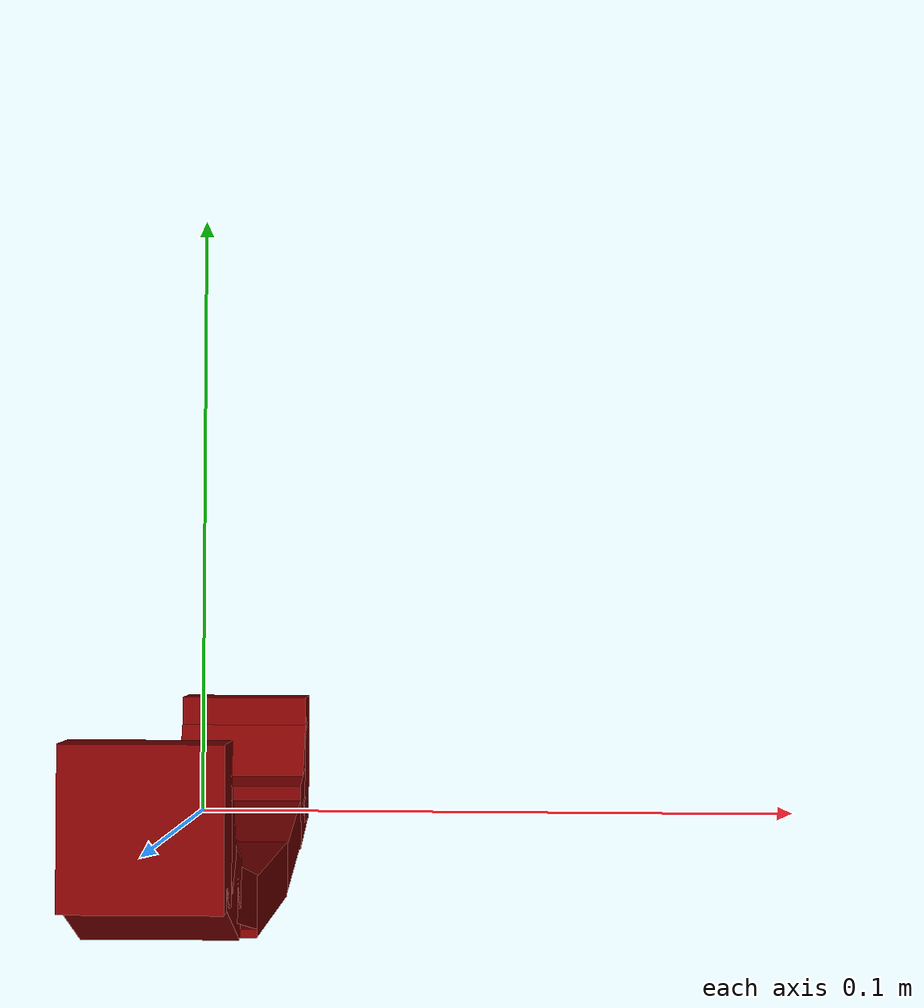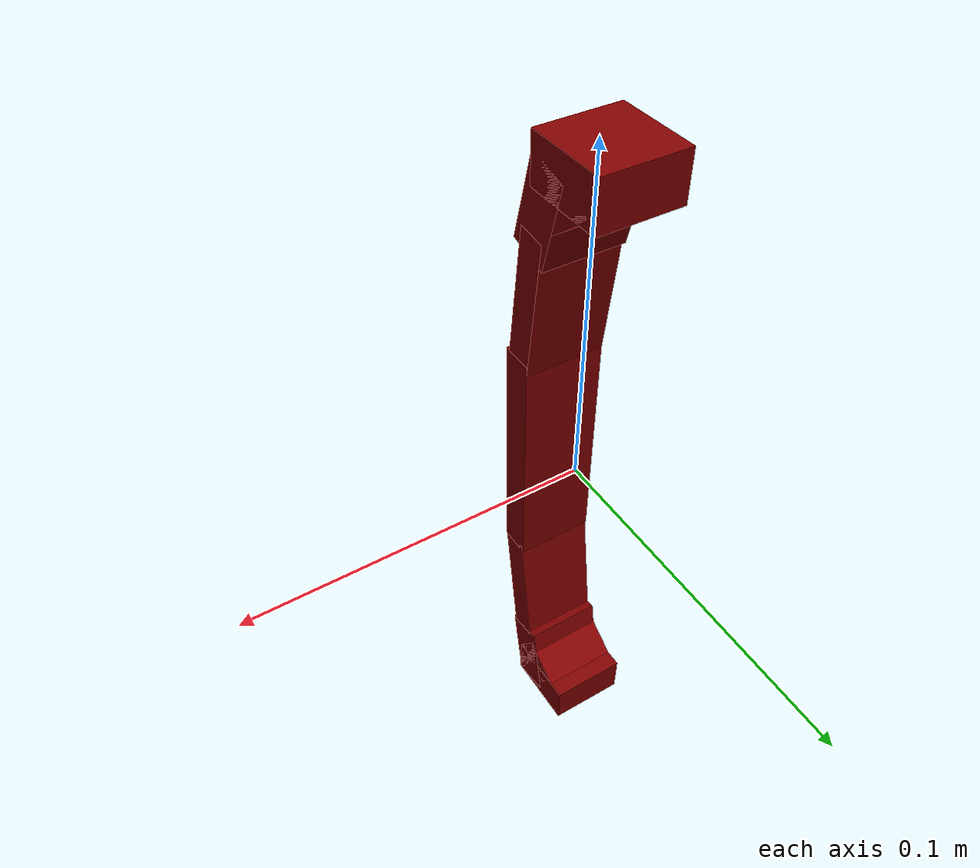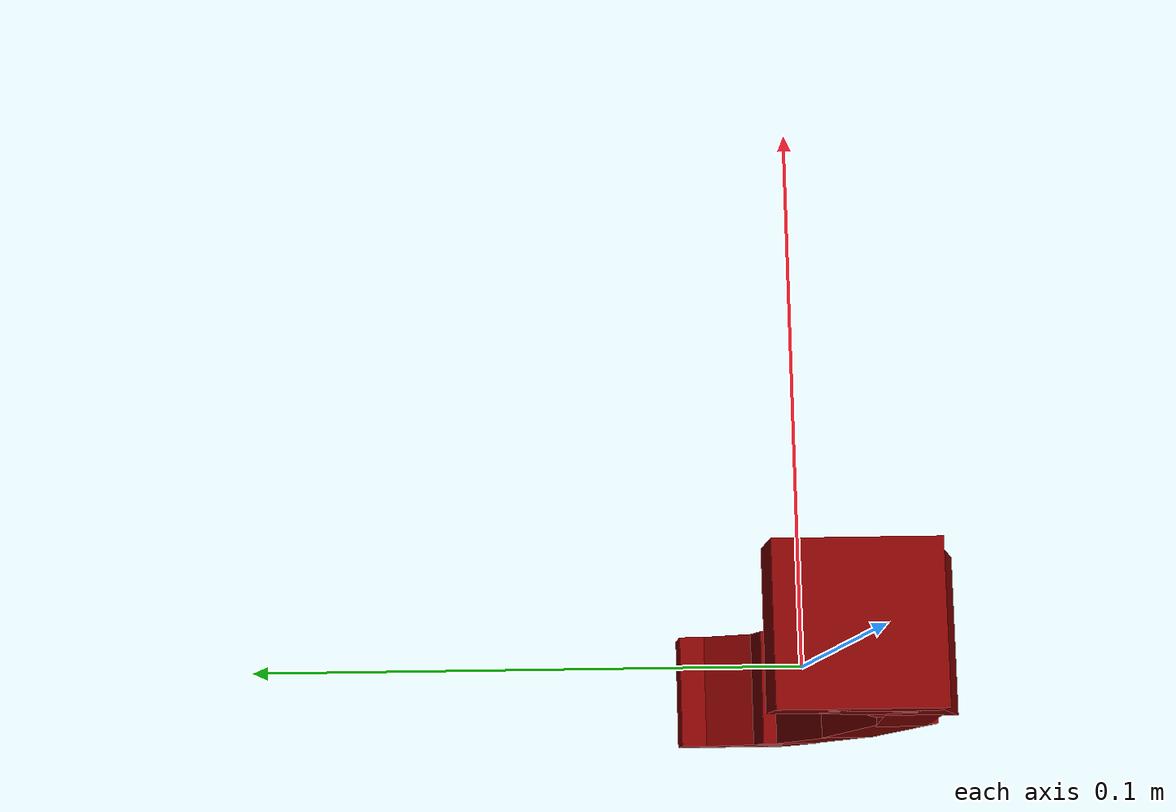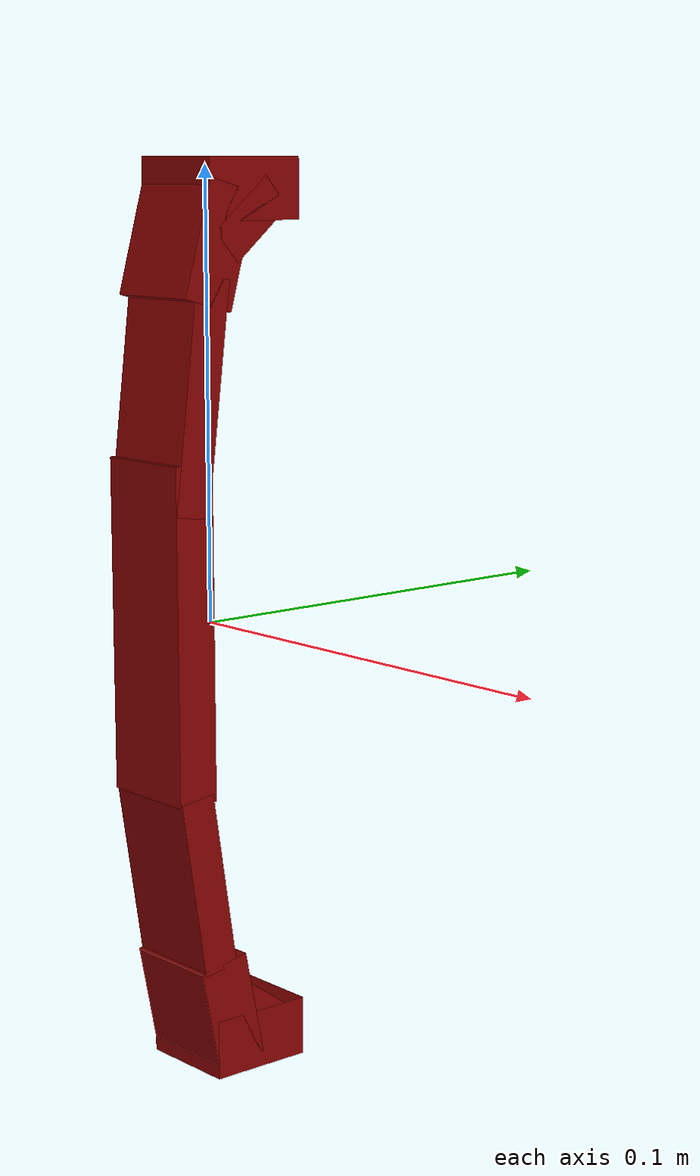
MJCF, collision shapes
<?xml version='1.0' encoding='UTF-8'?>
<mujoco model="model">
  <option timestep="0.002" gravity="0.0 0.0 -9.81"/>
  <compiler angle="radian"/>
  <asset>
    <mesh file="visuals/CabinetHandle047.obj" name="CabinetHandle047_vis"/>
    <texture file="visuals/T_BC001.png" name="tex" type="2d"/>
    <material name="mat" rgba="1 1 1 1.0" texture="tex" shininess="0.4472135901451111" specular="0.3103448502657381"/>
  </asset>
  <default>
    <default class="visual">
      <geom conaffinity="0" contype="0" group="1" type="mesh"/>
    </default>
    <default class="collision">
      <geom group="0" rgba="0.5 0 0 0.5" density="1.0" solref="0.004 1" solimp="0.998 0.998 0.001"/>
    </default>
    <default class="spawn">
      <geom group="0" rgba="1 1 1 0.5" contype="0" conaffinity="0"/>
      <site group="0" rgba="1 1 1 0.5"/>
    </default>
    <default class="region">
      <geom group="1" conaffinity="0" contype="0" rgba="0 1 0 0" mass="0"/>
    </default>
  </default>
  <worldbody>
    <body>
      <body name="object">
        <geom mesh="CabinetHandle047_vis" type="mesh" solimp="0.998 0.998 0.001" solref="0.001 1" friction="0.95 0.3 0.1" class="visual" material="mat"/>
        <geom type="box" pos="0.0 -0.012933514080941677 0.0" size="0.01192836556583643 0.004877060651779175 0.03721724823117256" quat="1.0 0.0 0.0 0.0" class="collision"/>
        <geom type="box" pos="-1.3156954911485228e-18 -0.010313878767192364 0.05119266360998154" size="0.01192836370319128 0.004316112492233515 0.025503046810626984" quat="0.9981622695922852 -0.06059722974896431 9.08295680499264e-18 -2.2219544668640433e-19" class="collision"/>
        <geom type="box" pos="2.250568195215901e-17 -0.010193996131420135 -0.056089285761117935" size="0.01192836370319128 0.004302943591028452 0.02027921937406063" quat="0.9972715377807617 0.07382054626941681 -2.0694487282912902e-17 -8.065914667211234e-19" class="collision"/>
        <geom type="box" pos="-1.0853313567397006e-17 0.004013151861727238 0.09488841146230698" size="0.011928366497159004 0.012105558067560196 0.006724787410348654" quat="1.0 0.0 0.0 0.0" class="collision"/>
        <geom type="box" pos="-8.245003819322334e-18 -0.00513478321954608 0.08314163982868195" size="0.01192836370319128 0.006194074172526598 0.013019957579672337" quat="0.9910342693328857 -0.13360773026943207 2.5290034759739056e-17 9.892852651465759e-20" class="collision"/>
        <geom type="box" pos="-9.433746731983515e-18 0.003233498428016901 0.08849526196718216" size="0.01192836370319128 0.00449305260553956 0.008921322412788868" quat="0.9072543978691101 -0.42058223485946655 8.923601287164911e-17 1.3882872073449514e-18" class="collision"/>
        <geom type="box" pos="2.9686933158099376e-17 -0.003964059986174107 -0.0876886248588562" size="0.01192836370319128 0.006194074172526598 0.013019956648349762" quat="0.9954765439033508 0.09500749409198761 -2.5380793016548374e-17 -8.978954559395735e-19" class="collision"/>
        <geom type="box" pos="-1.0714169380656398e-17 0.003908710088580847 -0.09477459639310837" size="0.01192836556583643 0.012105558067560196 0.006724787410348654" quat="1.0 0.0 0.0 0.0" class="collision"/>
        <geom type="box" pos="2.977169600982891e-17 0.003012977074831724 -0.08807036280632019" size="0.01192836370319128 0.00449305260553956 0.008921322412788868" quat="0.889373242855072 0.457181841135025 -1.0516174767491215e-16 -2.4219991024208316e-18" class="collision"/>
        <geom class="region" name="reg_main" type="box" pos="2.3283064365386963e-10 0.0 3.725290298461914e-09" size="0.012620706878602506 0.017176342964172364 0.10235184228420258"/>
      </body>
    </body>
  </worldbody>
  <actuator/>
</mujoco>
